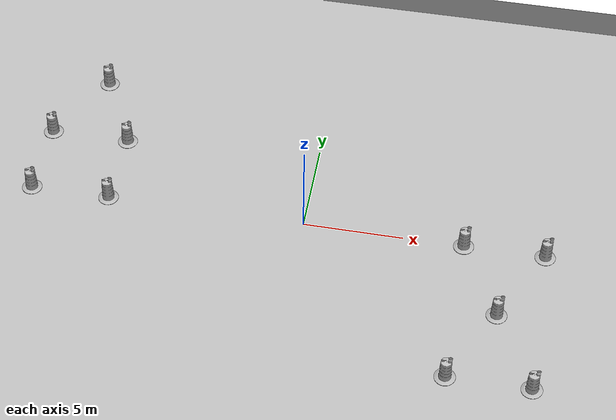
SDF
<sdf version="1.7">
 <world name="default">
  <light name="sun" type="directional">
   <pose>0 0 10 0 -0 0</pose>
   <diffuse>0.8 0.8 0.8 1</diffuse>
   <specular>0.2 0.2 0.2 1</specular>
   <attenuation>
    <range>1000</range>
    <constant>0.9</constant>
    <linear>0.01</linear>
    <quadratic>0.001</quadratic>
   </attenuation>
   <direction>-0.5 0.1 -0.9</direction>
   <spot><inner_angle>0</inner_angle><outer_angle>0</outer_angle><falloff>0</falloff></spot>
  </light>
  <gravity>0 0 -9.8</gravity>
  <magnetic_field>6e-06 2.3e-05 -4.2e-05</magnetic_field>
  <atmosphere type="adiabatic"/>
  <physics type="ode">
   <max_step_size>0.01</max_step_size>
   <real_time_factor>1</real_time_factor>
   <real_time_update_rate>100</real_time_update_rate>
  </physics>
  <scene><ambient>0.4 0.4 0.4 1</ambient><background>0.7 0.7 0.7 1</background><shadows>1</shadows></scene>
  <spherical_coordinates>
   <surface_model>EARTH_WGS84</surface_model>
   <latitude_deg>0</latitude_deg>
   <longitude_deg>0</longitude_deg>
   <elevation>0</elevation>
   <heading_deg>0</heading_deg>
  </spherical_coordinates>
  <model name="myh_50_Albedo">
   <link name="link_0">
    <inertial>
     <mass>1</mass>
     <inertia>
      <ixx>0.166667</ixx>
      <ixy>0</ixy>
      <ixz>0</ixz>
      <iyy>0.166667</iyy>
      <iyz>0</iyz>
      <izz>0.166667</izz>
     </inertia>
    </inertial>
    <visual name="visual">
     <geometry>
      <mesh><uri>/home/ht/ht_gazebo_envirment/dae/myh_50_Albedo.dae</uri><scale>1 1 1</scale></mesh>
     </geometry>
    </visual>
    <collision name="collision">
     <geometry>
      <mesh><uri>/home/ht/ht_gazebo_envirment/dae/myh_50_Albedo.dae</uri><scale>1 1 1</scale></mesh>
     </geometry>
     <surface>
      <friction>
       <ode><mu>1</mu><mu2>1</mu2><fdir1>0 0 0</fdir1><slip1>0</slip1><slip2>0</slip2></ode>
       <torsional>
        <coefficient>1</coefficient>
        <patch_radius>0</patch_radius>
        <surface_radius>0</surface_radius>
        <use_patch_radius>1</use_patch_radius>
        <ode><slip>0</slip></ode>
       </torsional>
      </friction>
      <bounce><restitution_coefficient>0</restitution_coefficient><threshold>1e+06</threshold></bounce>
      <contact>
       <collide_without_contact>0</collide_without_contact>
       <collide_without_contact_bitmask>1</collide_without_contact_bitmask>
       <collide_bitmask>1</collide_bitmask>
       <ode>
        <soft_cfm>0</soft_cfm>
        <soft_erp>0.2</soft_erp>
        <kp>1e+13</kp>
        <kd>1</kd>
        <max_vel>0.01</max_vel>
        <min_depth>0</min_depth>
       </ode>
       <bullet>
        <split_impulse>1</split_impulse>
        <split_impulse_penetration_threshold>-0.01</split_impulse_penetration_threshold>
        <soft_cfm>0</soft_cfm>
        <soft_erp>0.2</soft_erp>
        <kp>1e+13</kp>
        <kd>1</kd>
       </bullet>
      </contact>
     </surface>
    </collision>
   </link>
   <static>1</static>
   <pose>-0.004994 0.004994 0 0 -0 0</pose>
  </model>
  <model name="Construction Barrel">
   <link name="link">
    <inertial>
     <pose>0 0 0.4 0 -0 0</pose>
     <mass>500</mass>
     <inertia><ixx>51.2096</ixx><iyy>51.2096</iyy><izz>25</izz><ixy>0</ixy><ixz>0</ixz><iyz>0</iyz></inertia>
    </inertial>
    <collision name="collision">
     <geometry><mesh><uri>model://construction_barrel/meshes/construction_barrel.dae</uri></mesh></geometry>
    </collision>
    <visual name="visual">
     <geometry><mesh><uri>model://construction_barrel/meshes/construction_barrel.dae</uri></mesh></geometry>
    </visual>
   </link>
   <pose>-14.0003 -8e-06 -4e-06 -4e-06 -8e-06 0.000455</pose>
  </model>
  <model name="Construction Barrel_0">
   <link name="link">
    <inertial>
     <pose>0 0 0.4 0 -0 0</pose>
     <mass>500</mass>
     <inertia><ixx>51.2096</ixx><iyy>51.2096</iyy><izz>25</izz><ixy>0</ixy><ixz>0</ixz><iyz>0</iyz></inertia>
    </inertial>
    <collision name="collision">
     <geometry><mesh><uri>model://construction_barrel/meshes/construction_barrel.dae</uri></mesh></geometry>
    </collision>
    <visual name="visual">
     <geometry><mesh><uri>model://construction_barrel/meshes/construction_barrel.dae</uri></mesh></geometry>
    </visual>
   </link>
   <pose>9.99996 -4.00001 3e-06 -2e-06 -6e-06 0.000293</pose>
  </model>
  <model name="Construction Barrel_1">
   <link name="link">
    <inertial>
     <pose>0 0 0.4 0 -0 0</pose>
     <mass>500</mass>
     <inertia><ixx>51.2096</ixx><iyy>51.2096</iyy><izz>25</izz><ixy>0</ixy><ixz>0</ixz><iyz>0</iyz></inertia>
    </inertial>
    <collision name="collision">
     <geometry><mesh><uri>model://construction_barrel/meshes/construction_barrel.dae</uri></mesh></geometry>
    </collision>
    <visual name="visual">
     <geometry><mesh><uri>model://construction_barrel/meshes/construction_barrel.dae</uri></mesh></geometry>
    </visual>
   </link>
   <pose>12 -8 0 -1e-06 1e-06 0.000359</pose>
  </model>
  <model name="Construction Barrel_2">
   <link name="link">
    <inertial>
     <pose>0 0 0.4 0 -0 0</pose>
     <mass>500</mass>
     <inertia><ixx>51.2096</ixx><iyy>51.2096</iyy><izz>25</izz><ixy>0</ixy><ixz>0</ixz><iyz>0</iyz></inertia>
    </inertial>
    <collision name="collision">
     <geometry><mesh><uri>model://construction_barrel/meshes/construction_barrel.dae</uri></mesh></geometry>
    </collision>
    <visual name="visual">
     <geometry><mesh><uri>model://construction_barrel/meshes/construction_barrel.dae</uri></mesh></geometry>
    </visual>
   </link>
   <pose>-10.0002 -2.6e-05 -9e-06 -3e-06 2e-06 0.000344</pose>
  </model>
  <model name="Construction Barrel_3">
   <link name="link">
    <inertial>
     <pose>0 0 0.4 0 -0 0</pose>
     <mass>500</mass>
     <inertia><ixx>51.2096</ixx><iyy>51.2096</iyy><izz>25</izz><ixy>0</ixy><ixz>0</ixz><iyz>0</iyz></inertia>
    </inertial>
    <collision name="collision">
     <geometry><mesh><uri>model://construction_barrel/meshes/construction_barrel.dae</uri></mesh></geometry>
    </collision>
    <visual name="visual">
     <geometry><mesh><uri>model://construction_barrel/meshes/construction_barrel.dae</uri></mesh></geometry>
    </visual>
   </link>
   <pose>11.9999 -1.3e-05 -1e-06 -1e-06 7e-06 0.000296</pose>
  </model>
  <model name="Construction Barrel_4">
   <link name="link">
    <inertial>
     <pose>0 0 0.4 0 -0 0</pose>
     <mass>500</mass>
     <inertia><ixx>51.2096</ixx><iyy>51.2096</iyy><izz>25</izz><ixy>0</ixy><ixz>0</ixz><iyz>0</iyz></inertia>
    </inertial>
    <collision name="collision">
     <geometry><mesh><uri>model://construction_barrel/meshes/construction_barrel.dae</uri></mesh></geometry>
    </collision>
    <visual name="visual">
     <geometry><mesh><uri>model://construction_barrel/meshes/construction_barrel.dae</uri></mesh></geometry>
    </visual>
   </link>
   <pose>-10.0002 3.99997 5e-06 0 -1.1e-05 0.000296</pose>
  </model>
  <model name="Construction Barrel_5">
   <link name="link">
    <inertial>
     <pose>0 0 0.4 0 -0 0</pose>
     <mass>500</mass>
     <inertia><ixx>51.2096</ixx><iyy>51.2096</iyy><izz>25</izz><ixy>0</ixy><ixz>0</ixz><iyz>0</iyz></inertia>
    </inertial>
    <collision name="collision">
     <geometry><mesh><uri>model://construction_barrel/meshes/construction_barrel.dae</uri></mesh></geometry>
    </collision>
    <visual name="visual">
     <geometry><mesh><uri>model://construction_barrel/meshes/construction_barrel.dae</uri></mesh></geometry>
    </visual>
   </link>
   <pose>7.99998 -8.00002 -2e-06 8e-06 -1e-05 0.000179</pose>
  </model>
  <model name="Construction Barrel_6">
   <link name="link">
    <inertial>
     <pose>0 0 0.4 0 -0 0</pose>
     <mass>500</mass>
     <inertia><ixx>51.2096</ixx><iyy>51.2096</iyy><izz>25</izz><ixy>0</ixy><ixz>0</ixz><iyz>0</iyz></inertia>
    </inertial>
    <collision name="collision">
     <geometry><mesh><uri>model://construction_barrel/meshes/construction_barrel.dae</uri></mesh></geometry>
    </collision>
    <visual name="visual">
     <geometry><mesh><uri>model://construction_barrel/meshes/construction_barrel.dae</uri></mesh></geometry>
    </visual>
   </link>
   <pose>7.9999 -1.1e-05 0 0 -0 0.000295</pose>
  </model>
  <model name="Construction Barrel_7">
   <link name="link">
    <inertial>
     <pose>0 0 0.4 0 -0 0</pose>
     <mass>500</mass>
     <inertia><ixx>51.2096</ixx><iyy>51.2096</iyy><izz>25</izz><ixy>0</ixy><ixz>0</ixz><iyz>0</iyz></inertia>
    </inertial>
    <collision name="collision">
     <geometry><mesh><uri>model://construction_barrel/meshes/construction_barrel.dae</uri></mesh></geometry>
    </collision>
    <visual name="visual">
     <geometry><mesh><uri>model://construction_barrel/meshes/construction_barrel.dae</uri></mesh></geometry>
    </visual>
   </link>
   <pose>-14.0002 3.99997 -8e-06 -3e-06 -1e-06 0.000264</pose>
  </model>
  <model name="Construction Barrel_8">
   <link name="link">
    <inertial>
     <pose>0 0 0.4 0 -0 0</pose>
     <mass>500</mass>
     <inertia><ixx>51.2096</ixx><iyy>51.2096</iyy><izz>25</izz><ixy>0</ixy><ixz>0</ixz><iyz>0</iyz></inertia>
    </inertial>
    <collision name="collision">
     <geometry><mesh><uri>model://construction_barrel/meshes/construction_barrel.dae</uri></mesh></geometry>
    </collision>
    <visual name="visual">
     <geometry><mesh><uri>model://construction_barrel/meshes/construction_barrel.dae</uri></mesh></geometry>
    </visual>
   </link>
   <pose>-12.0002 7.99998 -3e-06 2e-06 -0 0.000285</pose>
  </model>
 </world>
</sdf>
